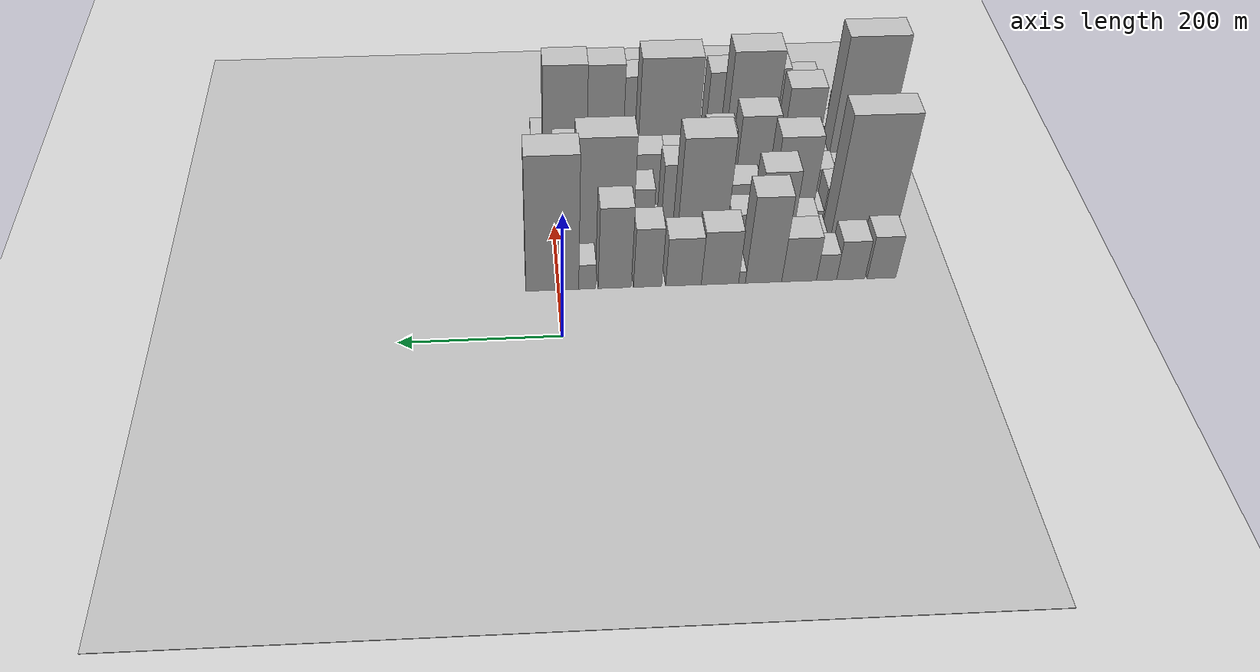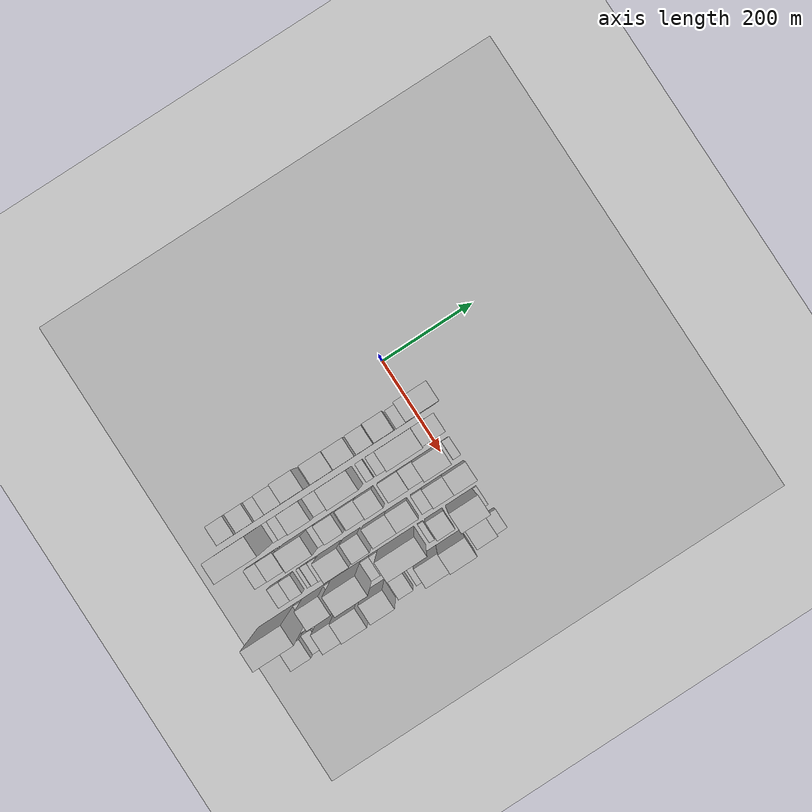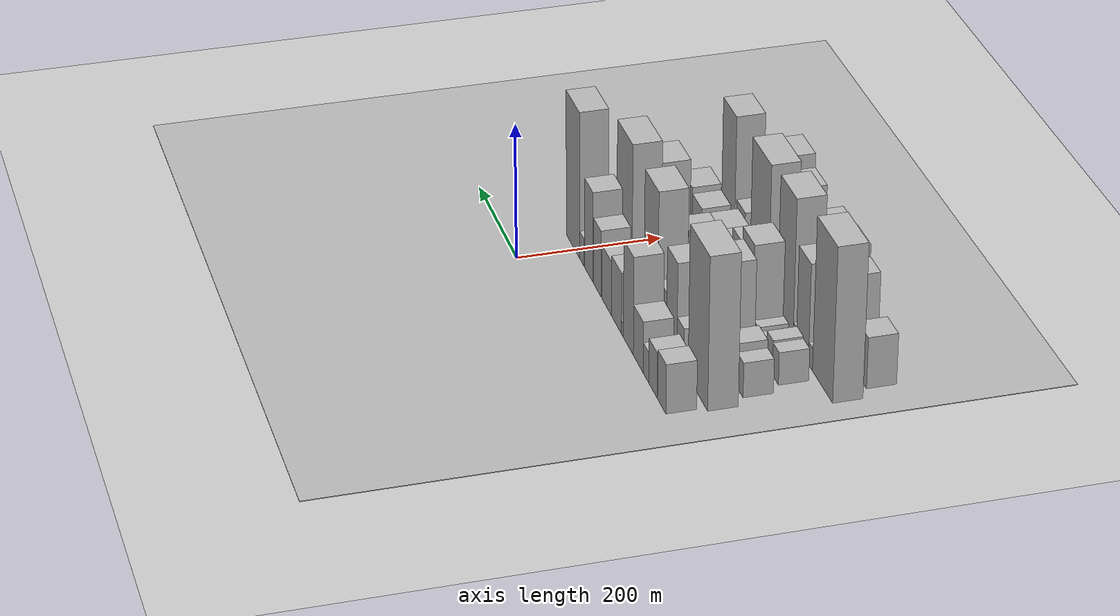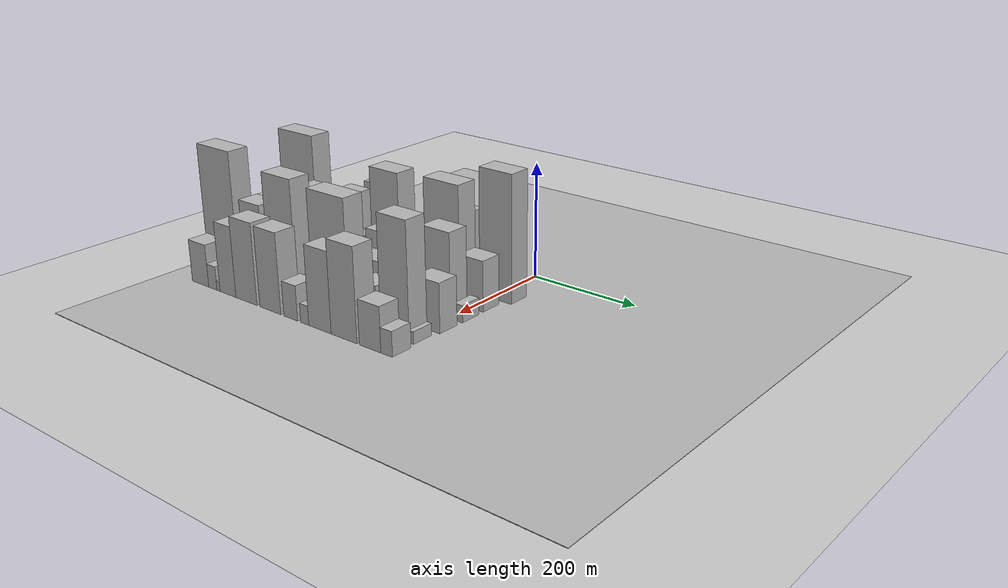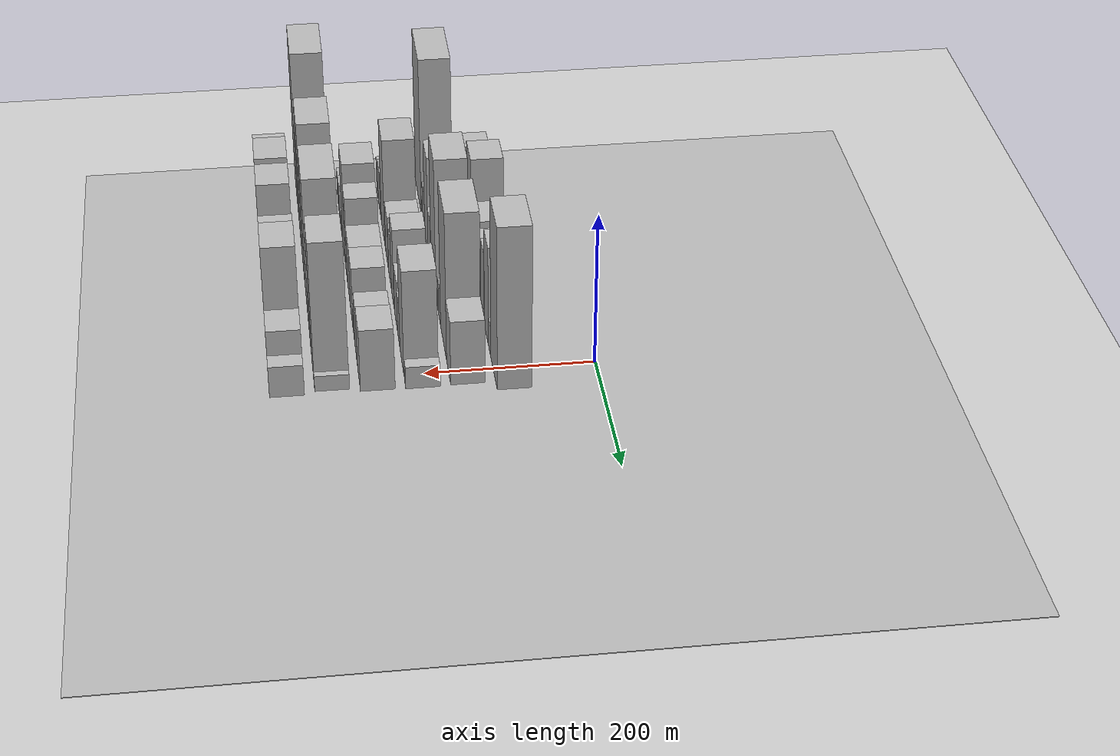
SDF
<sdf version="1.6">
 <world name="default">
  <include><name>ground_plane_1</name><uri>model://HANNAS_ground_plane</uri></include>
  <include>
   <name>ground_plane_2</name>
   <uri>model://HANNAS_ground_plane</uri>
   <pose>100 0 0  0 0 0</pose>
  </include>
  <model name="building_14">
   <static>1</static>
   <pose>100.0000 -410.4039 0 0.000000 0.000000 0.000000</pose>
   <link name="link">
    <pose>0 0 36.00 0 0 0</pose>
    <collision name="collision"><geometry><box><size>40.0000 36.8017 72.0000</size></box></geometry></collision>
    <visual name="visual">
     <cast_shadows>0</cast_shadows>
     <geometry><box><size>40.0000 36.8017 72.0000</size></box></geometry>
     <material>
      <script>
       <uri>model://HANNAS_wall/materials/scripts</uri>
       <uri>model://HANNAS_wall/materials/textures</uri>
       <name>vrc/HANNAS_wall</name>
      </script>
     </material>
    </visual>
   </link>
  </model>
  <model name="building_15">
   <static>1</static>
   <pose>100.0000 -370.9000 0 0.000000 0.000000 0.000000</pose>
   <link name="link">
    <pose>0 0 33.00 0 0 0</pose>
    <collision name="collision"><geometry><box><size>40.0000 36.2062 66.0000</size></box></geometry></collision>
    <visual name="visual">
     <cast_shadows>0</cast_shadows>
     <geometry><box><size>40.0000 36.2062 66.0000</size></box></geometry>
     <material>
      <script>
       <uri>model://HANNAS_wall/materials/scripts</uri>
       <uri>model://HANNAS_wall/materials/textures</uri>
       <name>vrc/HANNAS_wall</name>
      </script>
     </material>
    </visual>
   </link>
  </model>
  <model name="building_16">
   <static>1</static>
   <pose>100.0000 -339.9211 0 0.000000 0.000000 0.000000</pose>
   <link name="link">
    <pose>0 0 22.50 0 0 0</pose>
    <collision name="collision"><geometry><box><size>40.0000 25.7516 45.0000</size></box></geometry></collision>
    <visual name="visual">
     <cast_shadows>0</cast_shadows>
     <geometry><box><size>40.0000 25.7516 45.0000</size></box></geometry>
     <material>
      <script>
       <uri>model://HANNAS_wall/materials/scripts</uri>
       <uri>model://HANNAS_wall/materials/textures</uri>
       <name>vrc/HANNAS_wall</name>
      </script>
     </material>
    </visual>
   </link>
  </model>
  <model name="building_17">
   <static>1</static>
   <pose>100.0000 -304.7581 0 0.000000 0.000000 0.000000</pose>
   <link name="link">
    <pose>0 0 37.50 0 0 0</pose>
    <collision name="collision"><geometry><box><size>40.0000 44.5744 75.0000</size></box></geometry></collision>
    <visual name="visual">
     <cast_shadows>0</cast_shadows>
     <geometry><box><size>40.0000 44.5744 75.0000</size></box></geometry>
     <material>
      <script>
       <uri>model://HANNAS_wall/materials/scripts</uri>
       <uri>model://HANNAS_wall/materials/textures</uri>
       <name>vrc/HANNAS_wall</name>
      </script>
     </material>
    </visual>
   </link>
  </model>
  <model name="building_18">
   <static>1</static>
   <pose>100.0000 -259.2859 0 0.000000 0.000000 0.000000</pose>
   <link name="link">
    <pose>0 0 72.00 0 0 0</pose>
    <collision name="collision"><geometry><box><size>40.0000 46.3700 144.0000</size></box></geometry></collision>
    <visual name="visual">
     <cast_shadows>0</cast_shadows>
     <geometry><box><size>40.0000 46.3700 144.0000</size></box></geometry>
     <material>
      <script>
       <uri>model://HANNAS_wall/materials/scripts</uri>
       <uri>model://HANNAS_wall/materials/textures</uri>
       <name>vrc/HANNAS_wall</name>
      </script>
     </material>
    </visual>
   </link>
  </model>
  <model name="building_19">
   <static>1</static>
   <pose>100.0000 -231.8108 0 0.000000 0.000000 0.000000</pose>
   <link name="link">
    <pose>0 0 10.50 0 0 0</pose>
    <collision name="collision"><geometry><box><size>40.0000 8.5801 21.0000</size></box></geometry></collision>
    <visual name="visual">
     <cast_shadows>0</cast_shadows>
     <geometry><box><size>40.0000 8.5801 21.0000</size></box></geometry>
     <material>
      <script>
       <uri>model://HANNAS_wall/materials/scripts</uri>
       <uri>model://HANNAS_wall/materials/textures</uri>
       <name>vrc/HANNAS_wall</name>
      </script>
     </material>
    </visual>
   </link>
  </model>
  <model name="building_20">
   <static>1</static>
   <pose>100.0000 -203.7147 0 0.000000 0.000000 0.000000</pose>
   <link name="link">
    <pose>0 0 45.00 0 0 0</pose>
    <collision name="collision"><geometry><box><size>40.0000 47.6121 90.0000</size></box></geometry></collision>
    <visual name="visual">
     <cast_shadows>0</cast_shadows>
     <geometry><box><size>40.0000 47.6121 90.0000</size></box></geometry>
     <material>
      <script>
       <uri>model://HANNAS_wall/materials/scripts</uri>
       <uri>model://HANNAS_wall/materials/textures</uri>
       <name>vrc/HANNAS_wall</name>
      </script>
     </material>
    </visual>
   </link>
  </model>
  <model name="building_21">
   <static>1</static>
   <pose>100.0000 -157.2744 0 0.000000 0.000000 0.000000</pose>
   <link name="link">
    <pose>0 0 40.50 0 0 0</pose>
    <collision name="collision"><geometry><box><size>40.0000 45.2687 81.0000</size></box></geometry></collision>
    <visual name="visual">
     <cast_shadows>0</cast_shadows>
     <geometry><box><size>40.0000 45.2687 81.0000</size></box></geometry>
     <material>
      <script>
       <uri>model://HANNAS_wall/materials/scripts</uri>
       <uri>model://HANNAS_wall/materials/textures</uri>
       <name>vrc/HANNAS_wall</name>
      </script>
     </material>
    </visual>
   </link>
  </model>
  <model name="building_22">
   <static>1</static>
   <pose>100.0000 -111.7623 0 0.000000 0.000000 0.000000</pose>
   <link name="link">
    <pose>0 0 49.50 0 0 0</pose>
    <collision name="collision"><geometry><box><size>40.0000 35.7554 99.0000</size></box></geometry></collision>
    <visual name="visual">
     <cast_shadows>0</cast_shadows>
     <geometry><box><size>40.0000 35.7554 99.0000</size></box></geometry>
     <material>
      <script>
       <uri>model://HANNAS_wall/materials/scripts</uri>
       <uri>model://HANNAS_wall/materials/textures</uri>
       <name>vrc/HANNAS_wall</name>
      </script>
     </material>
    </visual>
   </link>
  </model>
  <model name="building_23">
   <static>1</static>
   <pose>100.0000 -70.0096 0 0.000000 0.000000 0.000000</pose>
   <link name="link">
    <pose>0 0 67.50 0 0 0</pose>
    <collision name="collision"><geometry><box><size>40.0000 41.7500 135.0000</size></box></geometry></collision>
    <visual name="visual">
     <cast_shadows>0</cast_shadows>
     <geometry><box><size>40.0000 41.7500 135.0000</size></box></geometry>
     <material>
      <script>
       <uri>model://HANNAS_wall/materials/scripts</uri>
       <uri>model://HANNAS_wall/materials/textures</uri>
       <name>vrc/HANNAS_wall</name>
      </script>
     </material>
    </visual>
   </link>
  </model>
  <model name="building_24">
   <static>1</static>
   <pose>100.0000 -35.3545 0 0.000000 0.000000 0.000000</pose>
   <link name="link">
    <pose>0 0 21.00 0 0 0</pose>
    <collision name="collision"><geometry><box><size>40.0000 21.5600 42.0000</size></box></geometry></collision>
    <visual name="visual">
     <cast_shadows>0</cast_shadows>
     <geometry><box><size>40.0000 21.5600 42.0000</size></box></geometry>
     <material>
      <script>
       <uri>model://HANNAS_wall/materials/scripts</uri>
       <uri>model://HANNAS_wall/materials/textures</uri>
       <name>vrc/HANNAS_wall</name>
      </script>
     </material>
    </visual>
   </link>
  </model>
  <model name="building_25">
   <static>1</static>
   <pose>100.0000 8.6502 0 0.000000 0.000000 0.000000</pose>
   <link name="link">
    <pose>0 0 109.50 0 0 0</pose>
    <collision name="collision"><geometry><box><size>40.0000 66.4493 219.0000</size></box></geometry></collision>
    <visual name="visual">
     <cast_shadows>0</cast_shadows>
     <geometry><box><size>40.0000 66.4493 219.0000</size></box></geometry>
     <material>
      <script>
       <uri>model://HANNAS_wall/materials/scripts</uri>
       <uri>model://HANNAS_wall/materials/textures</uri>
       <name>vrc/HANNAS_wall</name>
      </script>
     </material>
    </visual>
   </link>
  </model>
  <model name="building_59">
   <static>1</static>
   <pose>152.0000 -394.1868 0 0.000000 0.000000 0.000000</pose>
   <link name="link">
    <pose>0 0 111.00 0 0 0</pose>
    <collision name="collision"><geometry><box><size>40.0000 84.3393 222.0000</size></box></geometry></collision>
    <visual name="visual">
     <cast_shadows>0</cast_shadows>
     <geometry><box><size>40.0000 84.3393 222.0000</size></box></geometry>
     <material>
      <script>
       <uri>model://HANNAS_wall/materials/scripts</uri>
       <uri>model://HANNAS_wall/materials/textures</uri>
       <name>vrc/HANNAS_wall</name>
      </script>
     </material>
    </visual>
   </link>
  </model>
  <model name="building_60">
   <static>1</static>
   <pose>152.0000 -340.4203 0 0.000000 0.000000 0.000000</pose>
   <link name="link">
    <pose>0 0 15.00 0 0 0</pose>
    <collision name="collision"><geometry><box><size>40.0000 15.1937 30.0000</size></box></geometry></collision>
    <visual name="visual">
     <cast_shadows>0</cast_shadows>
     <geometry><box><size>40.0000 15.1937 30.0000</size></box></geometry>
     <material>
      <script>
       <uri>model://HANNAS_wall/materials/scripts</uri>
       <uri>model://HANNAS_wall/materials/textures</uri>
       <name>vrc/HANNAS_wall</name>
      </script>
     </material>
    </visual>
   </link>
  </model>
  <model name="building_61">
   <static>1</static>
   <pose>152.0000 -317.5365 0 0.000000 0.000000 0.000000</pose>
   <link name="link">
    <pose>0 0 30.00 0 0 0</pose>
    <collision name="collision"><geometry><box><size>40.0000 30.5738 60.0000</size></box></geometry></collision>
    <visual name="visual">
     <cast_shadows>0</cast_shadows>
     <geometry><box><size>40.0000 30.5738 60.0000</size></box></geometry>
     <material>
      <script>
       <uri>model://HANNAS_wall/materials/scripts</uri>
       <uri>model://HANNAS_wall/materials/textures</uri>
       <name>vrc/HANNAS_wall</name>
      </script>
     </material>
    </visual>
   </link>
  </model>
  <model name="building_62">
   <static>1</static>
   <pose>152.0000 -279.1232 0 0.000000 0.000000 0.000000</pose>
   <link name="link">
    <pose>0 0 69.00 0 0 0</pose>
    <collision name="collision"><geometry><box><size>40.0000 46.2529 138.0000</size></box></geometry></collision>
    <visual name="visual">
     <cast_shadows>0</cast_shadows>
     <geometry><box><size>40.0000 46.2529 138.0000</size></box></geometry>
     <material>
      <script>
       <uri>model://HANNAS_wall/materials/scripts</uri>
       <uri>model://HANNAS_wall/materials/textures</uri>
       <name>vrc/HANNAS_wall</name>
      </script>
     </material>
    </visual>
   </link>
  </model>
  <model name="building_63">
   <static>1</static>
   <pose>152.0000 -238.6577 0 0.000000 0.000000 0.000000</pose>
   <link name="link">
    <pose>0 0 34.50 0 0 0</pose>
    <collision name="collision"><geometry><box><size>40.0000 34.6780 69.0000</size></box></geometry></collision>
    <visual name="visual">
     <cast_shadows>0</cast_shadows>
     <geometry><box><size>40.0000 34.6780 69.0000</size></box></geometry>
     <material>
      <script>
       <uri>model://HANNAS_wall/materials/scripts</uri>
       <uri>model://HANNAS_wall/materials/textures</uri>
       <name>vrc/HANNAS_wall</name>
      </script>
     </material>
    </visual>
   </link>
  </model>
  <model name="building_64">
   <static>1</static>
   <pose>152.0000 -184.7868 0 0.000000 0.000000 0.000000</pose>
   <link name="link">
    <pose>0 0 97.50 0 0 0</pose>
    <collision name="collision"><geometry><box><size>40.0000 63.0637 195.0000</size></box></geometry></collision>
    <visual name="visual">
     <cast_shadows>0</cast_shadows>
     <geometry><box><size>40.0000 63.0637 195.0000</size></box></geometry>
     <material>
      <script>
       <uri>model://HANNAS_wall/materials/scripts</uri>
       <uri>model://HANNAS_wall/materials/textures</uri>
       <name>vrc/HANNAS_wall</name>
      </script>
     </material>
    </visual>
   </link>
  </model>
  <model name="building_65">
   <static>1</static>
   <pose>152.0000 -137.1245 0 0.000000 0.000000 0.000000</pose>
   <link name="link">
    <pose>0 0 15.00 0 0 0</pose>
    <collision name="collision"><geometry><box><size>40.0000 16.2610 30.0000</size></box></geometry></collision>
    <visual name="visual">
     <cast_shadows>0</cast_shadows>
     <geometry><box><size>40.0000 16.2610 30.0000</size></box></geometry>
     <material>
      <script>
       <uri>model://HANNAS_wall/materials/scripts</uri>
       <uri>model://HANNAS_wall/materials/textures</uri>
       <name>vrc/HANNAS_wall</name>
      </script>
     </material>
    </visual>
   </link>
  </model>
  <model name="building_66">
   <static>1</static>
   <pose>152.0000 -109.2072 0 0.000000 0.000000 0.000000</pose>
   <link name="link">
    <pose>0 0 25.50 0 0 0</pose>
    <collision name="collision"><geometry><box><size>40.0000 25.5736 51.0000</size></box></geometry></collision>
    <visual name="visual">
     <cast_shadows>0</cast_shadows>
     <geometry><box><size>40.0000 25.5736 51.0000</size></box></geometry>
     <material>
      <script>
       <uri>model://HANNAS_wall/materials/scripts</uri>
       <uri>model://HANNAS_wall/materials/textures</uri>
       <name>vrc/HANNAS_wall</name>
      </script>
     </material>
    </visual>
   </link>
  </model>
  <model name="building_67">
   <static>1</static>
   <pose>152.0000 -59.9210 0 0.000000 0.000000 0.000000</pose>
   <link name="link">
    <pose>0 0 100.50 0 0 0</pose>
    <collision name="collision"><geometry><box><size>40.0000 72.9987 201.0000</size></box></geometry></collision>
    <visual name="visual">
     <cast_shadows>0</cast_shadows>
     <geometry><box><size>40.0000 72.9987 201.0000</size></box></geometry>
     <material>
      <script>
       <uri>model://HANNAS_wall/materials/scripts</uri>
       <uri>model://HANNAS_wall/materials/textures</uri>
       <name>vrc/HANNAS_wall</name>
      </script>
     </material>
    </visual>
   </link>
  </model>
  <model name="building_68">
   <static>1</static>
   <pose>152.0000 1.2413 0 0.000000 0.000000 0.000000</pose>
   <link name="link">
    <pose>0 0 43.50 0 0 0</pose>
    <collision name="collision"><geometry><box><size>40.0000 49.3260 87.0000</size></box></geometry></collision>
    <visual name="visual">
     <cast_shadows>0</cast_shadows>
     <geometry><box><size>40.0000 49.3260 87.0000</size></box></geometry>
     <material>
      <script>
       <uri>model://HANNAS_wall/materials/scripts</uri>
       <uri>model://HANNAS_wall/materials/textures</uri>
       <name>vrc/HANNAS_wall</name>
      </script>
     </material>
    </visual>
   </link>
  </model>
  <model name="building_110">
   <static>1</static>
   <pose>204.0000 -404.1575 0 0.000000 0.000000 0.000000</pose>
   <link name="link">
    <pose>0 0 25.50 0 0 0</pose>
    <collision name="collision"><geometry><box><size>40.0000 27.6299 51.0000</size></box></geometry></collision>
    <visual name="visual">
     <cast_shadows>0</cast_shadows>
     <geometry><box><size>40.0000 27.6299 51.0000</size></box></geometry>
     <material>
      <script>
       <uri>model://HANNAS_wall/materials/scripts</uri>
       <uri>model://HANNAS_wall/materials/textures</uri>
       <name>vrc/HANNAS_wall</name>
      </script>
     </material>
    </visual>
   </link>
  </model>
  <model name="building_111">
   <static>1</static>
   <pose>204.0000 -372.3104 0 0.000000 0.000000 0.000000</pose>
   <link name="link">
    <pose>0 0 31.50 0 0 0</pose>
    <collision name="collision"><geometry><box><size>40.0000 36.0645 63.0000</size></box></geometry></collision>
    <visual name="visual">
     <cast_shadows>0</cast_shadows>
     <geometry><box><size>40.0000 36.0645 63.0000</size></box></geometry>
     <material>
      <script>
       <uri>model://HANNAS_wall/materials/scripts</uri>
       <uri>model://HANNAS_wall/materials/textures</uri>
       <name>vrc/HANNAS_wall</name>
      </script>
     </material>
    </visual>
   </link>
  </model>
  <model name="building_112">
   <static>1</static>
   <pose>204.0000 -349.0641 0 0.000000 0.000000 0.000000</pose>
   <link name="link">
    <pose>0 0 12.00 0 0 0</pose>
    <collision name="collision"><geometry><box><size>40.0000 10.4281 24.0000</size></box></geometry></collision>
    <visual name="visual">
     <cast_shadows>0</cast_shadows>
     <geometry><box><size>40.0000 10.4281 24.0000</size></box></geometry>
     <material>
      <script>
       <uri>model://HANNAS_wall/materials/scripts</uri>
       <uri>model://HANNAS_wall/materials/textures</uri>
       <name>vrc/HANNAS_wall</name>
      </script>
     </material>
    </visual>
   </link>
  </model>
  <model name="building_113">
   <static>1</static>
   <pose>204.0000 -311.5644 0 0.000000 0.000000 0.000000</pose>
   <link name="link">
    <pose>0 0 75.00 0 0 0</pose>
    <collision name="collision"><geometry><box><size>40.0000 54.5713 150.0000</size></box></geometry></collision>
    <visual name="visual">
     <cast_shadows>0</cast_shadows>
     <geometry><box><size>40.0000 54.5713 150.0000</size></box></geometry>
     <material>
      <script>
       <uri>model://HANNAS_wall/materials/scripts</uri>
       <uri>model://HANNAS_wall/materials/textures</uri>
       <name>vrc/HANNAS_wall</name>
      </script>
     </material>
    </visual>
   </link>
  </model>
  <model name="building_114">
   <static>1</static>
   <pose>204.0000 -275.3124 0 0.000000 0.000000 0.000000</pose>
   <link name="link">
    <pose>0 0 16.50 0 0 0</pose>
    <collision name="collision"><geometry><box><size>40.0000 17.9329 33.0000</size></box></geometry></collision>
    <visual name="visual">
     <cast_shadows>0</cast_shadows>
     <geometry><box><size>40.0000 17.9329 33.0000</size></box></geometry>
     <material>
      <script>
       <uri>model://HANNAS_wall/materials/scripts</uri>
       <uri>model://HANNAS_wall/materials/textures</uri>
       <name>vrc/HANNAS_wall</name>
      </script>
     </material>
    </visual>
   </link>
  </model>
  <model name="building_115">
   <static>1</static>
   <pose>204.0000 -246.6546 0 0.000000 0.000000 0.000000</pose>
   <link name="link">
    <pose>0 0 37.50 0 0 0</pose>
    <collision name="collision"><geometry><box><size>40.0000 39.3827 75.0000</size></box></geometry></collision>
    <visual name="visual">
     <cast_shadows>0</cast_shadows>
     <geometry><box><size>40.0000 39.3827 75.0000</size></box></geometry>
     <material>
      <script>
       <uri>model://HANNAS_wall/materials/scripts</uri>
       <uri>model://HANNAS_wall/materials/textures</uri>
       <name>vrc/HANNAS_wall</name>
      </script>
     </material>
    </visual>
   </link>
  </model>
  <model name="building_116">
   <static>1</static>
   <pose>204.0000 -223.4294 0 0.000000 0.000000 0.000000</pose>
   <link name="link">
    <pose>0 0 7.50 0 0 0</pose>
    <collision name="collision"><geometry><box><size>40.0000 7.0676 15.0000</size></box></geometry></collision>
    <visual name="visual">
     <cast_shadows>0</cast_shadows>
     <geometry><box><size>40.0000 7.0676 15.0000</size></box></geometry>
     <material>
      <script>
       <uri>model://HANNAS_wall/materials/scripts</uri>
       <uri>model://HANNAS_wall/materials/textures</uri>
       <name>vrc/HANNAS_wall</name>
      </script>
     </material>
    </visual>
   </link>
  </model>
  <model name="building_117">
   <static>1</static>
   <pose>204.0000 -198.9018 0 0.000000 0.000000 0.000000</pose>
   <link name="link">
    <pose>0 0 36.00 0 0 0</pose>
    <collision name="collision"><geometry><box><size>40.0000 41.9876 72.0000</size></box></geometry></collision>
    <visual name="visual">
     <cast_shadows>0</cast_shadows>
     <geometry><box><size>40.0000 41.9876 72.0000</size></box></geometry>
     <material>
      <script>
       <uri>model://HANNAS_wall/materials/scripts</uri>
       <uri>model://HANNAS_wall/materials/textures</uri>
       <name>vrc/HANNAS_wall</name>
      </script>
     </material>
    </visual>
   </link>
  </model>
  <model name="building_118">
   <static>1</static>
   <pose>204.0000 -158.7116 0 0.000000 0.000000 0.000000</pose>
   <link name="link">
    <pose>0 0 55.50 0 0 0</pose>
    <collision name="collision"><geometry><box><size>40.0000 38.3928 111.0000</size></box></geometry></collision>
    <visual name="visual">
     <cast_shadows>0</cast_shadows>
     <geometry><box><size>40.0000 38.3928 111.0000</size></box></geometry>
     <material>
      <script>
       <uri>model://HANNAS_wall/materials/scripts</uri>
       <uri>model://HANNAS_wall/materials/textures</uri>
       <name>vrc/HANNAS_wall</name>
      </script>
     </material>
    </visual>
   </link>
  </model>
  <model name="building_119">
   <static>1</static>
   <pose>204.0000 -108.0489 0 0.000000 0.000000 0.000000</pose>
   <link name="link">
    <pose>0 0 36.00 0 0 0</pose>
    <collision name="collision"><geometry><box><size>40.0000 42.9327 72.0000</size></box></geometry></collision>
    <visual name="visual">
     <cast_shadows>0</cast_shadows>
     <geometry><box><size>40.0000 42.9327 72.0000</size></box></geometry>
     <material>
      <script>
       <uri>model://HANNAS_wall/materials/scripts</uri>
       <uri>model://HANNAS_wall/materials/textures</uri>
       <name>vrc/HANNAS_wall</name>
      </script>
     </material>
    </visual>
   </link>
  </model>
  <model name="building_120">
   <static>1</static>
   <pose>204.0000 -70.3440 0 0.000000 0.000000 0.000000</pose>
   <link name="link">
    <pose>0 0 30.00 0 0 0</pose>
    <collision name="collision"><geometry><box><size>40.0000 32.4772 60.0000</size></box></geometry></collision>
    <visual name="visual">
     <cast_shadows>0</cast_shadows>
     <geometry><box><size>40.0000 32.4772 60.0000</size></box></geometry>
     <material>
      <script>
       <uri>model://HANNAS_wall/materials/scripts</uri>
       <uri>model://HANNAS_wall/materials/textures</uri>
       <name>vrc/HANNAS_wall</name>
      </script>
     </material>
    </visual>
   </link>
  </model>
  <model name="building_121">
   <static>1</static>
   <pose>204.0000 -25.8347 0 0.000000 0.000000 0.000000</pose>
   <link name="link">
    <pose>0 0 72.00 0 0 0</pose>
    <collision name="collision"><geometry><box><size>40.0000 56.5414 144.0000</size></box></geometry></collision>
    <visual name="visual">
     <cast_shadows>0</cast_shadows>
     <geometry><box><size>40.0000 56.5414 144.0000</size></box></geometry>
     <material>
      <script>
       <uri>model://HANNAS_wall/materials/scripts</uri>
       <uri>model://HANNAS_wall/materials/textures</uri>
       <name>vrc/HANNAS_wall</name>
      </script>
     </material>
    </visual>
   </link>
  </model>
  <model name="building_122">
   <static>1</static>
   <pose>204.0000 18.9330 0 0.000000 0.000000 0.000000</pose>
   <link name="link">
    <pose>0 0 15.00 0 0 0</pose>
    <collision name="collision"><geometry><box><size>40.0000 16.9940 30.0000</size></box></geometry></collision>
    <visual name="visual">
     <cast_shadows>0</cast_shadows>
     <geometry><box><size>40.0000 16.9940 30.0000</size></box></geometry>
     <material>
      <script>
       <uri>model://HANNAS_wall/materials/scripts</uri>
       <uri>model://HANNAS_wall/materials/textures</uri>
       <name>vrc/HANNAS_wall</name>
      </script>
     </material>
    </visual>
   </link>
  </model>
  <model name="building_158">
   <static>1</static>
   <pose>256.0000 -388.7364 0 0.000000 0.000000 0.000000</pose>
   <link name="link">
    <pose>0 0 24.00 0 0 0</pose>
    <collision name="collision"><geometry><box><size>40.0000 25.0695 48.0000</size></box></geometry></collision>
    <visual name="visual">
     <cast_shadows>0</cast_shadows>
     <geometry><box><size>40.0000 25.0695 48.0000</size></box></geometry>
     <material>
      <script>
       <uri>model://HANNAS_wall/materials/scripts</uri>
       <uri>model://HANNAS_wall/materials/textures</uri>
       <name>vrc/HANNAS_wall</name>
      </script>
     </material>
    </visual>
   </link>
  </model>
  <model name="building_159">
   <static>1</static>
   <pose>256.0000 -363.3498 0 0.000000 0.000000 0.000000</pose>
   <link name="link">
    <pose>0 0 25.50 0 0 0</pose>
    <collision name="collision"><geometry><box><size>40.0000 25.7036 51.0000</size></box></geometry></collision>
    <visual name="visual">
     <cast_shadows>0</cast_shadows>
     <geometry><box><size>40.0000 25.7036 51.0000</size></box></geometry>
     <material>
      <script>
       <uri>model://HANNAS_wall/materials/scripts</uri>
       <uri>model://HANNAS_wall/materials/textures</uri>
       <name>vrc/HANNAS_wall</name>
      </script>
     </material>
    </visual>
   </link>
  </model>
  <model name="building_160">
   <static>1</static>
   <pose>256.0000 -338.9774 0 0.000000 0.000000 0.000000</pose>
   <link name="link">
    <pose>0 0 7.50 0 0 0</pose>
    <collision name="collision"><geometry><box><size>40.0000 7.0412 15.0000</size></box></geometry></collision>
    <visual name="visual">
     <cast_shadows>0</cast_shadows>
     <geometry><box><size>40.0000 7.0412 15.0000</size></box></geometry>
     <material>
      <script>
       <uri>model://HANNAS_wall/materials/scripts</uri>
       <uri>model://HANNAS_wall/materials/textures</uri>
       <name>vrc/HANNAS_wall</name>
      </script>
     </material>
    </visual>
   </link>
  </model>
  <model name="building_161">
   <static>1</static>
   <pose>256.0000 -324.5823 0 0.000000 0.000000 0.000000</pose>
   <link name="link">
    <pose>0 0 15.00 0 0 0</pose>
    <collision name="collision"><geometry><box><size>40.0000 15.7491 30.0000</size></box></geometry></collision>
    <visual name="visual">
     <cast_shadows>0</cast_shadows>
     <geometry><box><size>40.0000 15.7491 30.0000</size></box></geometry>
     <material>
      <script>
       <uri>model://HANNAS_wall/materials/scripts</uri>
       <uri>model://HANNAS_wall/materials/textures</uri>
       <name>vrc/HANNAS_wall</name>
      </script>
     </material>
    </visual>
   </link>
  </model>
  <model name="building_162">
   <static>1</static>
   <pose>256.0000 -307.1062 0 0.000000 0.000000 0.000000</pose>
   <link name="link">
    <pose>0 0 18.00 0 0 0</pose>
    <collision name="collision"><geometry><box><size>40.0000 19.2031 36.0000</size></box></geometry></collision>
    <visual name="visual">
     <cast_shadows>0</cast_shadows>
     <geometry><box><size>40.0000 19.2031 36.0000</size></box></geometry>
     <material>
      <script>
       <uri>model://HANNAS_wall/materials/scripts</uri>
       <uri>model://HANNAS_wall/materials/textures</uri>
       <name>vrc/HANNAS_wall</name>
      </script>
     </material>
    </visual>
   </link>
  </model>
  <model name="building_163">
   <static>1</static>
   <pose>256.0000 -268.8551 0 0.000000 0.000000 0.000000</pose>
   <link name="link">
    <pose>0 0 72.00 0 0 0</pose>
    <collision name="collision"><geometry><box><size>40.0000 51.2990 144.0000</size></box></geometry></collision>
    <visual name="visual">
     <cast_shadows>0</cast_shadows>
     <geometry><box><size>40.0000 51.2990 144.0000</size></box></geometry>
     <material>
      <script>
       <uri>model://HANNAS_wall/materials/scripts</uri>
       <uri>model://HANNAS_wall/materials/textures</uri>
       <name>vrc/HANNAS_wall</name>
      </script>
     </material>
    </visual>
   </link>
  </model>
  <model name="building_164">
   <static>1</static>
   <pose>256.0000 -220.5933 0 0.000000 0.000000 0.000000</pose>
   <link name="link">
    <pose>0 0 60.00 0 0 0</pose>
    <collision name="collision"><geometry><box><size>40.0000 37.2245 120.0000</size></box></geometry></collision>
    <visual name="visual">
     <cast_shadows>0</cast_shadows>
     <geometry><box><size>40.0000 37.2245 120.0000</size></box></geometry>
     <material>
      <script>
       <uri>model://HANNAS_wall/materials/scripts</uri>
       <uri>model://HANNAS_wall/materials/textures</uri>
       <name>vrc/HANNAS_wall</name>
      </script>
     </material>
    </visual>
   </link>
  </model>
  <model name="building_165">
   <static>1</static>
   <pose>256.0000 -171.0028 0 0.000000 0.000000 0.000000</pose>
   <link name="link">
    <pose>0 0 43.50 0 0 0</pose>
    <collision name="collision"><geometry><box><size>40.0000 49.9565 87.0000</size></box></geometry></collision>
    <visual name="visual">
     <cast_shadows>0</cast_shadows>
     <geometry><box><size>40.0000 49.9565 87.0000</size></box></geometry>
     <material>
      <script>
       <uri>model://HANNAS_wall/materials/scripts</uri>
       <uri>model://HANNAS_wall/materials/textures</uri>
       <name>vrc/HANNAS_wall</name>
      </script>
     </material>
    </visual>
   </link>
  </model>
  <model name="building_166">
   <static>1</static>
   <pose>256.0000 -122.5746 0 0.000000 0.000000 0.000000</pose>
   <link name="link">
    <pose>0 0 43.50 0 0 0</pose>
    <collision name="collision"><geometry><box><size>40.0000 46.8999 87.0000</size></box></geometry></collision>
    <visual name="visual">
     <cast_shadows>0</cast_shadows>
     <geometry><box><size>40.0000 46.8999 87.0000</size></box></geometry>
     <material>
      <script>
       <uri>model://HANNAS_wall/materials/scripts</uri>
       <uri>model://HANNAS_wall/materials/textures</uri>
       <name>vrc/HANNAS_wall</name>
      </script>
     </material>
    </visual>
   </link>
  </model>
  <model name="building_167">
   <static>1</static>
   <pose>256.0000 -79.2479 0 0.000000 0.000000 0.000000</pose>
   <link name="link">
    <pose>0 0 21.00 0 0 0</pose>
    <collision name="collision"><geometry><box><size>40.0000 23.7534 42.0000</size></box></geometry></collision>
    <visual name="visual">
     <cast_shadows>0</cast_shadows>
     <geometry><box><size>40.0000 23.7534 42.0000</size></box></geometry>
     <material>
      <script>
       <uri>model://HANNAS_wall/materials/scripts</uri>
       <uri>model://HANNAS_wall/materials/textures</uri>
       <name>vrc/HANNAS_wall</name>
      </script>
     </material>
    </visual>
   </link>
  </model>
  <model name="building_168">
   <static>1</static>
   <pose>256.0000 -45.4312 0 0.000000 0.000000 0.000000</pose>
   <link name="link">
    <pose>0 0 37.50 0 0 0</pose>
    <collision name="collision"><geometry><box><size>40.0000 43.8801 75.0000</size></box></geometry></collision>
    <visual name="visual">
     <cast_shadows>0</cast_shadows>
     <geometry><box><size>40.0000 43.8801 75.0000</size></box></geometry>
     <material>
      <script>
       <uri>model://HANNAS_wall/materials/scripts</uri>
       <uri>model://HANNAS_wall/materials/textures</uri>
       <name>vrc/HANNAS_wall</name>
      </script>
     </material>
    </visual>
   </link>
  </model>
  <model name="building_169">
   <static>1</static>
   <pose>256.0000 1.3614 0 0.000000 0.000000 0.000000</pose>
   <link name="link">
    <pose>0 0 42.00 0 0 0</pose>
    <collision name="collision"><geometry><box><size>40.0000 49.7051 84.0000</size></box></geometry></collision>
    <visual name="visual">
     <cast_shadows>0</cast_shadows>
     <geometry><box><size>40.0000 49.7051 84.0000</size></box></geometry>
     <material>
      <script>
       <uri>model://HANNAS_wall/materials/scripts</uri>
       <uri>model://HANNAS_wall/materials/textures</uri>
       <name>vrc/HANNAS_wall</name>
      </script>
     </material>
    </visual>
   </link>
  </model>
  <model name="building_203">
   <static>1</static>
   <pose>308.0000 -420.1940 0 0.000000 0.000000 0.000000</pose>
   <link name="link">
    <pose>0 0 112.50 0 0 0</pose>
    <collision name="collision"><geometry><box><size>40.0000 80.0637 225.0000</size></box></geometry></collision>
    <visual name="visual">
     <cast_shadows>0</cast_shadows>
     <geometry><box><size>40.0000 80.0637 225.0000</size></box></geometry>
     <material>
      <script>
       <uri>model://HANNAS_wall/materials/scripts</uri>
       <uri>model://HANNAS_wall/materials/textures</uri>
       <name>vrc/HANNAS_wall</name>
      </script>
     </material>
    </visual>
   </link>
  </model>
  <model name="building_204">
   <static>1</static>
   <pose>308.0000 -371.8515 0 0.000000 0.000000 0.000000</pose>
   <link name="link">
    <pose>0 0 16.50 0 0 0</pose>
    <collision name="collision"><geometry><box><size>40.0000 16.6212 33.0000</size></box></geometry></collision>
    <visual name="visual">
     <cast_shadows>0</cast_shadows>
     <geometry><box><size>40.0000 16.6212 33.0000</size></box></geometry>
     <material>
      <script>
       <uri>model://HANNAS_wall/materials/scripts</uri>
       <uri>model://HANNAS_wall/materials/textures</uri>
       <name>vrc/HANNAS_wall</name>
      </script>
     </material>
    </visual>
   </link>
  </model>
  <model name="building_205">
   <static>1</static>
   <pose>308.0000 -338.9683 0 0.000000 0.000000 0.000000</pose>
   <link name="link">
    <pose>0 0 73.50 0 0 0</pose>
    <collision name="collision"><geometry><box><size>40.0000 49.1452 147.0000</size></box></geometry></collision>
    <visual name="visual">
     <cast_shadows>0</cast_shadows>
     <geometry><box><size>40.0000 49.1452 147.0000</size></box></geometry>
     <material>
      <script>
       <uri>model://HANNAS_wall/materials/scripts</uri>
       <uri>model://HANNAS_wall/materials/textures</uri>
       <name>vrc/HANNAS_wall</name>
      </script>
     </material>
    </visual>
   </link>
  </model>
  <model name="building_206">
   <static>1</static>
   <pose>308.0000 -307.7096 0 0.000000 0.000000 0.000000</pose>
   <link name="link">
    <pose>0 0 13.50 0 0 0</pose>
    <collision name="collision"><geometry><box><size>40.0000 13.3723 27.0000</size></box></geometry></collision>
    <visual name="visual">
     <cast_shadows>0</cast_shadows>
     <geometry><box><size>40.0000 13.3723 27.0000</size></box></geometry>
     <material>
      <script>
       <uri>model://HANNAS_wall/materials/scripts</uri>
       <uri>model://HANNAS_wall/materials/textures</uri>
       <name>vrc/HANNAS_wall</name>
      </script>
     </material>
    </visual>
   </link>
  </model>
  <model name="building_207">
   <static>1</static>
   <pose>308.0000 -268.1008 0 0.000000 0.000000 0.000000</pose>
   <link name="link">
    <pose>0 0 103.50 0 0 0</pose>
    <collision name="collision"><geometry><box><size>40.0000 65.8453 207.0000</size></box></geometry></collision>
    <visual name="visual">
     <cast_shadows>0</cast_shadows>
     <geometry><box><size>40.0000 65.8453 207.0000</size></box></geometry>
     <material>
      <script>
       <uri>model://HANNAS_wall/materials/scripts</uri>
       <uri>model://HANNAS_wall/materials/textures</uri>
       <name>vrc/HANNAS_wall</name>
      </script>
     </material>
    </visual>
   </link>
  </model>
  <model name="building_208">
   <static>1</static>
   <pose>308.0000 -225.5479 0 0.000000 0.000000 0.000000</pose>
   <link name="link">
    <pose>0 0 16.50 0 0 0</pose>
    <collision name="collision"><geometry><box><size>40.0000 19.2605 33.0000</size></box></geometry></collision>
    <visual name="visual">
     <cast_shadows>0</cast_shadows>
     <geometry><box><size>40.0000 19.2605 33.0000</size></box></geometry>
     <material>
      <script>
       <uri>model://HANNAS_wall/materials/scripts</uri>
       <uri>model://HANNAS_wall/materials/textures</uri>
       <name>vrc/HANNAS_wall</name>
      </script>
     </material>
    </visual>
   </link>
  </model>
  <model name="building_209">
   <static>1</static>
   <pose>308.0000 -206.6104 0 0.000000 0.000000 0.000000</pose>
   <link name="link">
    <pose>0 0 16.50 0 0 0</pose>
    <collision name="collision"><geometry><box><size>40.0000 18.6145 33.0000</size></box></geometry></collision>
    <visual name="visual">
     <cast_shadows>0</cast_shadows>
     <geometry><box><size>40.0000 18.6145 33.0000</size></box></geometry>
     <material>
      <script>
       <uri>model://HANNAS_wall/materials/scripts</uri>
       <uri>model://HANNAS_wall/materials/textures</uri>
       <name>vrc/HANNAS_wall</name>
      </script>
     </material>
    </visual>
   </link>
  </model>
  <model name="building_210">
   <static>1</static>
   <pose>308.0000 -157.1610 0 0.000000 0.000000 0.000000</pose>
   <link name="link">
    <pose>0 0 100.50 0 0 0</pose>
    <collision name="collision"><geometry><box><size>40.0000 80.2844 201.0000</size></box></geometry></collision>
    <visual name="visual">
     <cast_shadows>0</cast_shadows>
     <geometry><box><size>40.0000 80.2844 201.0000</size></box></geometry>
     <material>
      <script>
       <uri>model://HANNAS_wall/materials/scripts</uri>
       <uri>model://HANNAS_wall/materials/textures</uri>
       <name>vrc/HANNAS_wall</name>
      </script>
     </material>
    </visual>
   </link>
  </model>
  <model name="building_211">
   <static>1</static>
   <pose>308.0000 -103.1857 0 0.000000 0.000000 0.000000</pose>
   <link name="link">
    <pose>0 0 12.00 0 0 0</pose>
    <collision name="collision"><geometry><box><size>40.0000 11.6662 24.0000</size></box></geometry></collision>
    <visual name="visual">
     <cast_shadows>0</cast_shadows>
     <geometry><box><size>40.0000 11.6662 24.0000</size></box></geometry>
     <material>
      <script>
       <uri>model://HANNAS_wall/materials/scripts</uri>
       <uri>model://HANNAS_wall/materials/textures</uri>
       <name>vrc/HANNAS_wall</name>
      </script>
     </material>
    </visual>
   </link>
  </model>
  <model name="building_212">
   <static>1</static>
   <pose>308.0000 -74.1154 0 0.000000 0.000000 0.000000</pose>
   <link name="link">
    <pose>0 0 37.50 0 0 0</pose>
    <collision name="collision"><geometry><box><size>40.0000 38.4742 75.0000</size></box></geometry></collision>
    <visual name="visual">
     <cast_shadows>0</cast_shadows>
     <geometry><box><size>40.0000 38.4742 75.0000</size></box></geometry>
     <material>
      <script>
       <uri>model://HANNAS_wall/materials/scripts</uri>
       <uri>model://HANNAS_wall/materials/textures</uri>
       <name>vrc/HANNAS_wall</name>
      </script>
     </material>
    </visual>
   </link>
  </model>
  <model name="building_213">
   <static>1</static>
   <pose>308.0000 -18.4715 0 0.000000 0.000000 0.000000</pose>
   <link name="link">
    <pose>0 0 97.50 0 0 0</pose>
    <collision name="collision"><geometry><box><size>40.0000 58.8136 195.0000</size></box></geometry></collision>
    <visual name="visual">
     <cast_shadows>0</cast_shadows>
     <geometry><box><size>40.0000 58.8136 195.0000</size></box></geometry>
     <material>
      <script>
       <uri>model://HANNAS_wall/materials/scripts</uri>
       <uri>model://HANNAS_wall/materials/textures</uri>
       <name>vrc/HANNAS_wall</name>
      </script>
     </material>
    </visual>
   </link>
  </model>
  <model name="building_214">
   <static>1</static>
   <pose>308.0000 15.5172 0 0.000000 0.000000 0.000000</pose>
   <link name="link">
    <pose>0 0 10.50 0 0 0</pose>
    <collision name="collision"><geometry><box><size>40.0000 9.1639 21.0000</size></box></geometry></collision>
    <visual name="visual">
     <cast_shadows>0</cast_shadows>
     <geometry><box><size>40.0000 9.1639 21.0000</size></box></geometry>
     <material>
      <script>
       <uri>model://HANNAS_wall/materials/scripts</uri>
       <uri>model://HANNAS_wall/materials/textures</uri>
       <name>vrc/HANNAS_wall</name>
      </script>
     </material>
    </visual>
   </link>
  </model>
  <model name="building_249">
   <static>1</static>
   <pose>360.0000 -417.2815 0 0.000000 0.000000 0.000000</pose>
   <link name="link">
    <pose>0 0 37.50 0 0 0</pose>
    <collision name="collision"><geometry><box><size>40.0000 43.1014 75.0000</size></box></geometry></collision>
    <visual name="visual">
     <cast_shadows>0</cast_shadows>
     <geometry><box><size>40.0000 43.1014 75.0000</size></box></geometry>
     <material>
      <script>
       <uri>model://HANNAS_wall/materials/scripts</uri>
       <uri>model://HANNAS_wall/materials/textures</uri>
       <name>vrc/HANNAS_wall</name>
      </script>
     </material>
    </visual>
   </link>
  </model>
  <model name="building_250">
   <static>1</static>
   <pose>360.0000 -385.0775 0 0.000000 0.000000 0.000000</pose>
   <link name="link">
    <pose>0 0 21.00 0 0 0</pose>
    <collision name="collision"><geometry><box><size>40.0000 21.3065 42.0000</size></box></geometry></collision>
    <visual name="visual">
     <cast_shadows>0</cast_shadows>
     <geometry><box><size>40.0000 21.3065 42.0000</size></box></geometry>
     <material>
      <script>
       <uri>model://HANNAS_wall/materials/scripts</uri>
       <uri>model://HANNAS_wall/materials/textures</uri>
       <name>vrc/HANNAS_wall</name>
      </script>
     </material>
    </visual>
   </link>
  </model>
  <model name="building_251">
   <static>1</static>
   <pose>360.0000 -370.2886 0 0.000000 0.000000 0.000000</pose>
   <link name="link">
    <pose>0 0 9.00 0 0 0</pose>
    <collision name="collision"><geometry><box><size>40.0000 8.2714 18.0000</size></box></geometry></collision>
    <visual name="visual">
     <cast_shadows>0</cast_shadows>
     <geometry><box><size>40.0000 8.2714 18.0000</size></box></geometry>
     <material>
      <script>
       <uri>model://HANNAS_wall/materials/scripts</uri>
       <uri>model://HANNAS_wall/materials/textures</uri>
       <name>vrc/HANNAS_wall</name>
      </script>
     </material>
    </visual>
   </link>
  </model>
  <model name="building_252">
   <static>1</static>
   <pose>360.0000 -346.0115 0 0.000000 0.000000 0.000000</pose>
   <link name="link">
    <pose>0 0 61.50 0 0 0</pose>
    <collision name="collision"><geometry><box><size>40.0000 40.2828 123.0000</size></box></geometry></collision>
    <visual name="visual">
     <cast_shadows>0</cast_shadows>
     <geometry><box><size>40.0000 40.2828 123.0000</size></box></geometry>
     <material>
      <script>
       <uri>model://HANNAS_wall/materials/scripts</uri>
       <uri>model://HANNAS_wall/materials/textures</uri>
       <name>vrc/HANNAS_wall</name>
      </script>
     </material>
    </visual>
   </link>
  </model>
  <model name="building_253">
   <static>1</static>
   <pose>360.0000 -299.8348 0 0.000000 0.000000 0.000000</pose>
   <link name="link">
    <pose>0 0 70.50 0 0 0</pose>
    <collision name="collision"><geometry><box><size>40.0000 52.0705 141.0000</size></box></geometry></collision>
    <visual name="visual">
     <cast_shadows>0</cast_shadows>
     <geometry><box><size>40.0000 52.0705 141.0000</size></box></geometry>
     <material>
      <script>
       <uri>model://HANNAS_wall/materials/scripts</uri>
       <uri>model://HANNAS_wall/materials/textures</uri>
       <name>vrc/HANNAS_wall</name>
      </script>
     </material>
    </visual>
   </link>
  </model>
  <model name="building_254">
   <static>1</static>
   <pose>360.0000 -241.7317 0 0.000000 0.000000 0.000000</pose>
   <link name="link">
    <pose>0 0 69.00 0 0 0</pose>
    <collision name="collision"><geometry><box><size>40.0000 50.1358 138.0000</size></box></geometry></collision>
    <visual name="visual">
     <cast_shadows>0</cast_shadows>
     <geometry><box><size>40.0000 50.1358 138.0000</size></box></geometry>
     <material>
      <script>
       <uri>model://HANNAS_wall/materials/scripts</uri>
       <uri>model://HANNAS_wall/materials/textures</uri>
       <name>vrc/HANNAS_wall</name>
      </script>
     </material>
    </visual>
   </link>
  </model>
  <model name="building_255">
   <static>1</static>
   <pose>360.0000 -193.7334 0 0.000000 0.000000 0.000000</pose>
   <link name="link">
    <pose>0 0 30.00 0 0 0</pose>
    <collision name="collision"><geometry><box><size>40.0000 31.8606 60.0000</size></box></geometry></collision>
    <visual name="visual">
     <cast_shadows>0</cast_shadows>
     <geometry><box><size>40.0000 31.8606 60.0000</size></box></geometry>
     <material>
      <script>
       <uri>model://HANNAS_wall/materials/scripts</uri>
       <uri>model://HANNAS_wall/materials/textures</uri>
       <name>vrc/HANNAS_wall</name>
      </script>
     </material>
    </visual>
   </link>
  </model>
  <model name="building_256">
   <static>1</static>
   <pose>360.0000 -161.4870 0 0.000000 0.000000 0.000000</pose>
   <link name="link">
    <pose>0 0 16.50 0 0 0</pose>
    <collision name="collision"><geometry><box><size>40.0000 18.6323 33.0000</size></box></geometry></collision>
    <visual name="visual">
     <cast_shadows>0</cast_shadows>
     <geometry><box><size>40.0000 18.6323 33.0000</size></box></geometry>
     <material>
      <script>
       <uri>model://HANNAS_wall/materials/scripts</uri>
       <uri>model://HANNAS_wall/materials/textures</uri>
       <name>vrc/HANNAS_wall</name>
      </script>
     </material>
    </visual>
   </link>
  </model>
  <model name="building_257">
   <static>1</static>
   <pose>360.0000 -127.3590 0 0.000000 0.000000 0.000000</pose>
   <link name="link">
    <pose>0 0 67.50 0 0 0</pose>
    <collision name="collision"><geometry><box><size>40.0000 49.6237 135.0000</size></box></geometry></collision>
    <visual name="visual">
     <cast_shadows>0</cast_shadows>
     <geometry><box><size>40.0000 49.6237 135.0000</size></box></geometry>
     <material>
      <script>
       <uri>model://HANNAS_wall/materials/scripts</uri>
       <uri>model://HANNAS_wall/materials/textures</uri>
       <name>vrc/HANNAS_wall</name>
      </script>
     </material>
    </visual>
   </link>
  </model>
  <model name="building_258">
   <static>1</static>
   <pose>360.0000 -74.8215 0 0.000000 0.000000 0.000000</pose>
   <link name="link">
    <pose>0 0 78.00 0 0 0</pose>
    <collision name="collision"><geometry><box><size>40.0000 55.4513 156.0000</size></box></geometry></collision>
    <visual name="visual">
     <cast_shadows>0</cast_shadows>
     <geometry><box><size>40.0000 55.4513 156.0000</size></box></geometry>
     <material>
      <script>
       <uri>model://HANNAS_wall/materials/scripts</uri>
       <uri>model://HANNAS_wall/materials/textures</uri>
       <name>vrc/HANNAS_wall</name>
      </script>
     </material>
    </visual>
   </link>
  </model>
  <model name="building_259">
   <static>1</static>
   <pose>360.0000 -19.8469 0 0.000000 0.000000 0.000000</pose>
   <link name="link">
    <pose>0 0 37.50 0 0 0</pose>
    <collision name="collision"><geometry><box><size>40.0000 44.4979 75.0000</size></box></geometry></collision>
    <visual name="visual">
     <cast_shadows>0</cast_shadows>
     <geometry><box><size>40.0000 44.4979 75.0000</size></box></geometry>
     <material>
      <script>
       <uri>model://HANNAS_wall/materials/scripts</uri>
       <uri>model://HANNAS_wall/materials/textures</uri>
       <name>vrc/HANNAS_wall</name>
      </script>
     </material>
    </visual>
   </link>
  </model>
  <model name="building_260">
   <static>1</static>
   <pose>360.0000 14.1481 0 0.000000 0.000000 0.000000</pose>
   <link name="link">
    <pose>0 0 21.00 0 0 0</pose>
    <collision name="collision"><geometry><box><size>40.0000 23.4921 42.0000</size></box></geometry></collision>
    <visual name="visual">
     <cast_shadows>0</cast_shadows>
     <geometry><box><size>40.0000 23.4921 42.0000</size></box></geometry>
     <material>
      <script>
       <uri>model://HANNAS_wall/materials/scripts</uri>
       <uri>model://HANNAS_wall/materials/textures</uri>
       <name>vrc/HANNAS_wall</name>
      </script>
     </material>
    </visual>
   </link>
  </model>
 </world>
</sdf>
